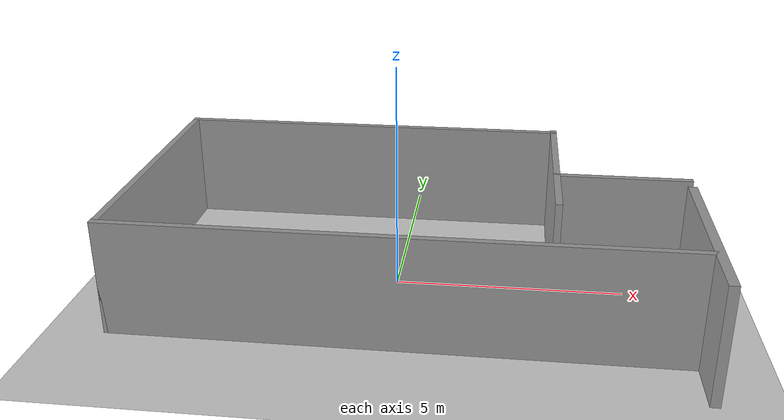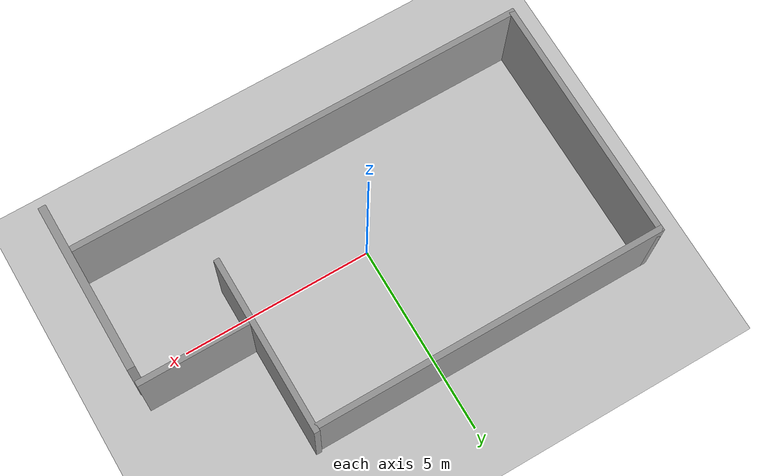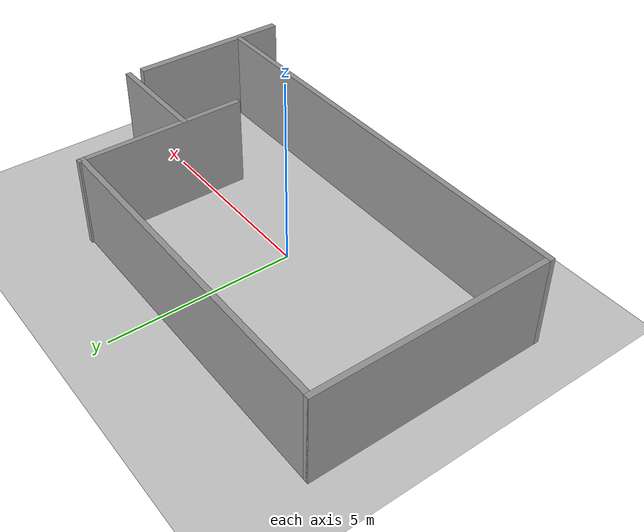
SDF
<sdf version="1.7">
 <world name="default">
  <light name="sun" type="directional">
   <pose>0 0 10 0 -0 0</pose>
   <diffuse>0.8 0.8 0.8 1</diffuse>
   <specular>0.2 0.2 0.2 1</specular>
   <attenuation>
    <range>1000</range>
    <constant>0.9</constant>
    <linear>0.01</linear>
    <quadratic>0.001</quadratic>
   </attenuation>
   <direction>-0.5 0.1 -0.9</direction>
   <spot><inner_angle>0</inner_angle><outer_angle>0</outer_angle><falloff>0</falloff></spot>
  </light>
  <model name="ground_plane">
   <static>1</static>
   <link name="link">
    <collision name="collision">
     <geometry><plane><normal>0 0 1</normal><size>100 100</size></plane></geometry>
     <surface>
      <contact><collide_bitmask>65535</collide_bitmask></contact>
      <friction><ode><mu>100</mu><mu2>50</mu2></ode></friction>
     </surface>
    </collision>
    <visual name="visual">
     <cast_shadows>0</cast_shadows>
     <geometry><plane><normal>0 0 1</normal><size>100 100</size></plane></geometry>
     <material>
      <script><uri>file://media/materials/scripts/gazebo.material</uri><name>Gazebo/Grey</name></script>
     </material>
    </visual>
   </link>
  </model>
  <gravity>0 0 -9.8</gravity>
  <magnetic_field>6e-06 2.3e-05 -4.2e-05</magnetic_field>
  <atmosphere type="adiabatic"/>
  <physics type="ode">
   <max_step_size>0.001</max_step_size>
   <real_time_factor>1</real_time_factor>
   <real_time_update_rate>1000</real_time_update_rate>
  </physics>
  <scene><ambient>0.4 0.4 0.4 1</ambient><background>0.7 0.7 0.7 1</background><shadows>1</shadows></scene>
  <spherical_coordinates>
   <surface_model>EARTH_WGS84</surface_model>
   <latitude_deg>0</latitude_deg>
   <longitude_deg>0</longitude_deg>
   <elevation>0</elevation>
   <heading_deg>0</heading_deg>
  </spherical_coordinates>
  <model name="Untitled">
   <pose>0.322336 0.319478 0 0 -0 0</pose>
   <link name="Wall_20">
    <collision name="Wall_20_Collision">
     <geometry><box><size>12 0.15 2.5</size></box></geometry>
     <pose>0 0 1.25 0 -0 0</pose>
    </collision>
    <visual name="Wall_20_Visual">
     <pose>0 0 1.25 0 -0 0</pose>
     <geometry><box><size>12 0.15 2.5</size></box></geometry>
     <material>
      <script><uri>file://media/materials/scripts/gazebo.material</uri><name>Gazebo/Grey</name></script>
      <ambient>1 1 1 1</ambient>
     </material>
     <meta><layer>0</layer></meta>
    </visual>
    <pose>-0.05 -3.125 0 0 -0 0</pose>
   </link>
   <link name="Wall_22">
    <collision name="Wall_22_Collision">
     <geometry><box><size>6.5 0.15 2.5</size></box></geometry>
     <pose>0 0 1.25 0 -0 0</pose>
    </collision>
    <visual name="Wall_22_Visual">
     <pose>0 0 1.25 0 -0 0</pose>
     <geometry><box><size>6.5 0.15 2.5</size></box></geometry>
     <material>
      <script><uri>file://media/materials/scripts/gazebo.material</uri><name>Gazebo/Grey</name></script>
      <ambient>1 1 1 1</ambient>
     </material>
     <meta><layer>0</layer></meta>
    </visual>
    <pose>-5.975 0.05 0 0 -0 1.5708</pose>
   </link>
   <link name="Wall_23">
    <collision name="Wall_23_Collision">
     <geometry><box><size>9.25 0.15 2.5</size></box></geometry>
     <pose>0 0 1.25 0 -0 0</pose>
    </collision>
    <visual name="Wall_23_Visual">
     <pose>0 0 1.25 0 -0 0</pose>
     <geometry><box><size>9.25 0.15 2.5</size></box></geometry>
     <material>
      <script><uri>file://media/materials/scripts/gazebo.material</uri><name>Gazebo/Grey</name></script>
      <ambient>1 1 1 1</ambient>
     </material>
     <meta><layer>0</layer></meta>
    </visual>
    <pose>-1.425 3.225 0 0 -0 0</pose>
   </link>
   <link name="Wall_25">
    <collision name="Wall_25_Collision">
     <geometry><box><size>4.6 0.15 2.5</size></box></geometry>
     <pose>0 0 1.25 0 -0 0</pose>
    </collision>
    <visual name="Wall_25_Visual">
     <pose>0 0 1.25 0 -0 0</pose>
     <geometry><box><size>4.6 0.15 2.5</size></box></geometry>
     <material>
      <script><uri>file://media/materials/scripts/gazebo.material</uri><name>Gazebo/Grey</name></script>
      <ambient>1 1 1 1</ambient>
     </material>
     <meta><layer>0</layer></meta>
    </visual>
    <pose>3.125 1.05 0 0 -0 -1.5708</pose>
   </link>
   <link name="Wall_26">
    <collision name="Wall_26_Collision">
     <geometry><box><size>3 0.15 2.5</size></box></geometry>
     <pose>0 0 1.25 0 -0 0</pose>
    </collision>
    <visual name="Wall_26_Visual">
     <pose>0 0 1.25 0 -0 0</pose>
     <geometry><box><size>3 0.15 2.5</size></box></geometry>
     <material>
      <script><uri>file://media/materials/scripts/gazebo.material</uri><name>Gazebo/Grey</name></script>
      <ambient>1 1 1 1</ambient>
     </material>
     <meta><layer>0</layer></meta>
    </visual>
    <pose>4.55 0.40 0 0 -0 0</pose>
   </link>
   <link name="Wall_27">
    <collision name="Wall_27_Collision">
     <geometry><box><size>4.4 0.20 2.5</size></box></geometry>
     <pose>0 0 1.25 0 -0 0</pose>
    </collision>
    <visual name="Wall_27_Visual">
     <pose>0 0 1.25 0 -0 0</pose>
     <geometry><box><size>4.4 0.2 2.5</size></box></geometry>
     <material>
      <script><uri>file://media/materials/scripts/gazebo.material</uri><name>Gazebo/Grey</name></script>
      <ambient>1 1 1 1</ambient>
     </material>
     <meta><layer>0</layer></meta>
    </visual>
    <pose>5.975 -2.175 0 0 -0 -1.5708</pose>
   </link>
   <static>1</static>
  </model>
 </world>
</sdf>
